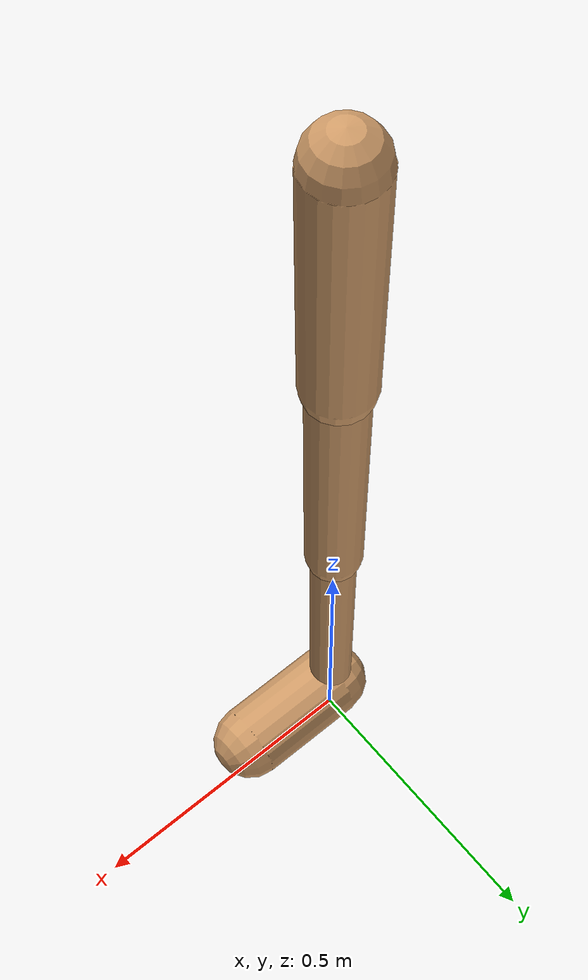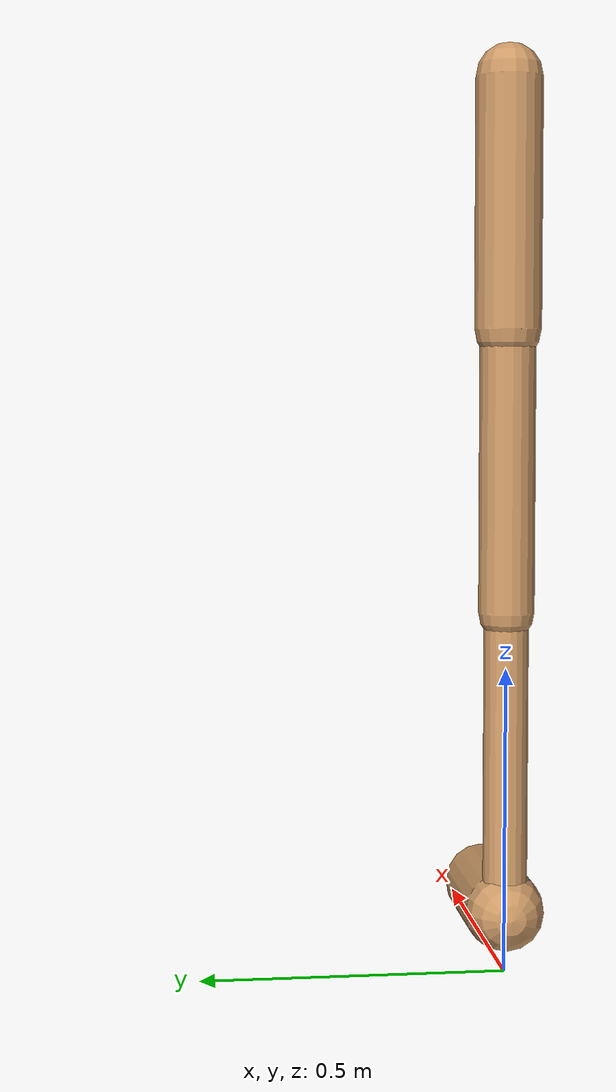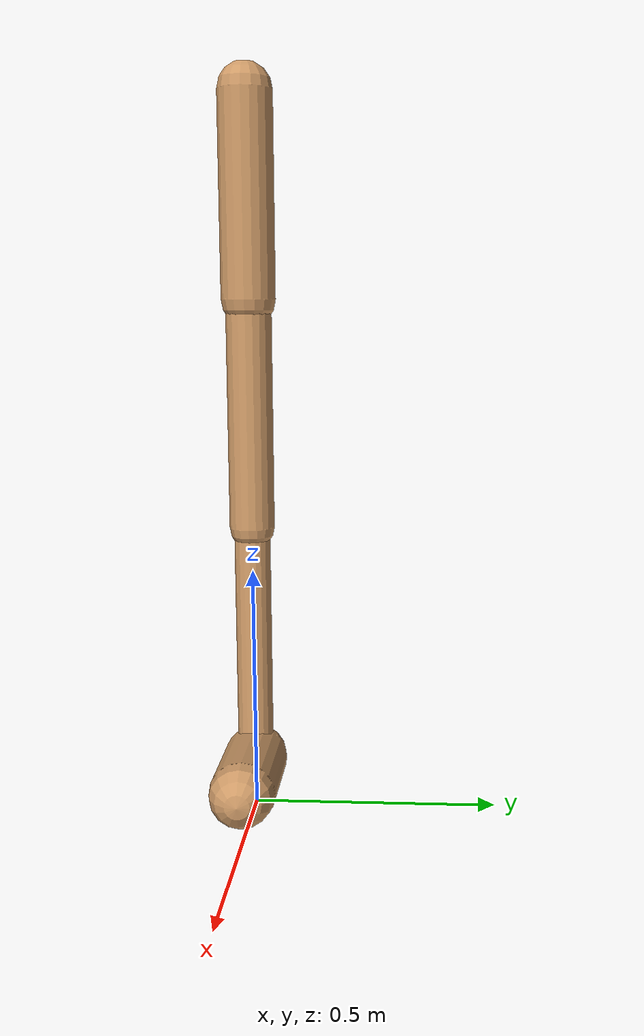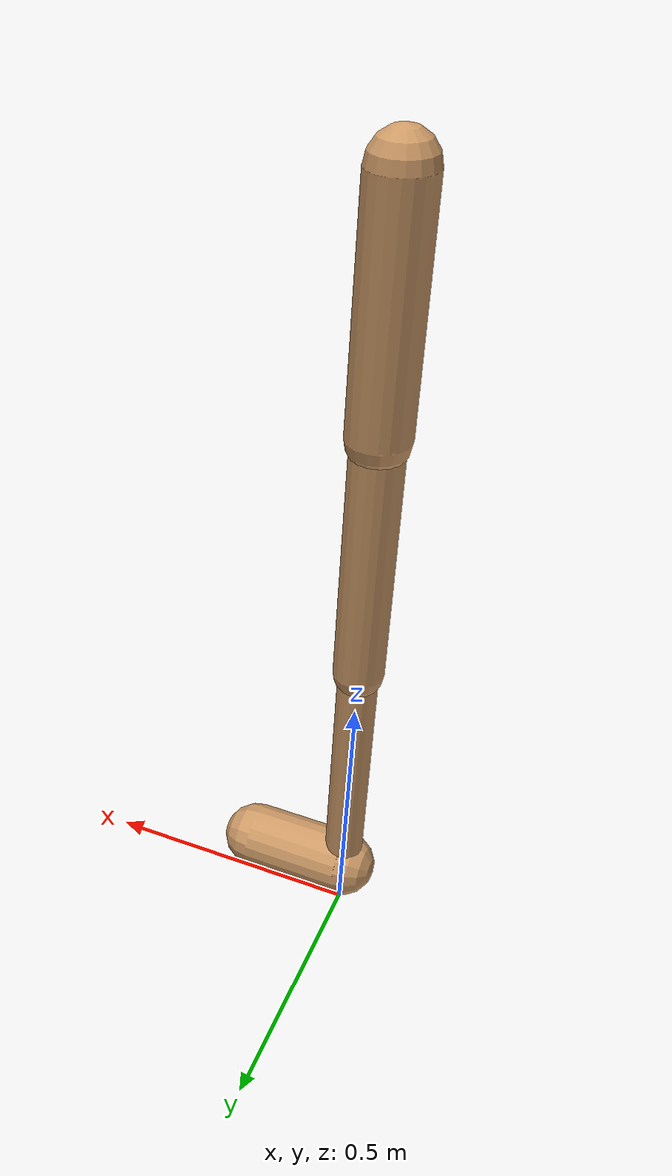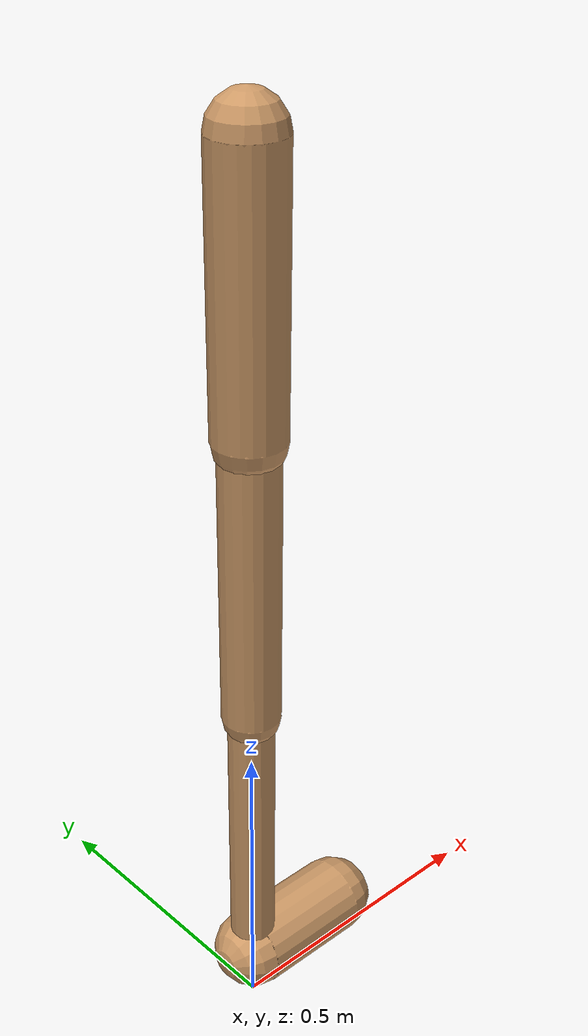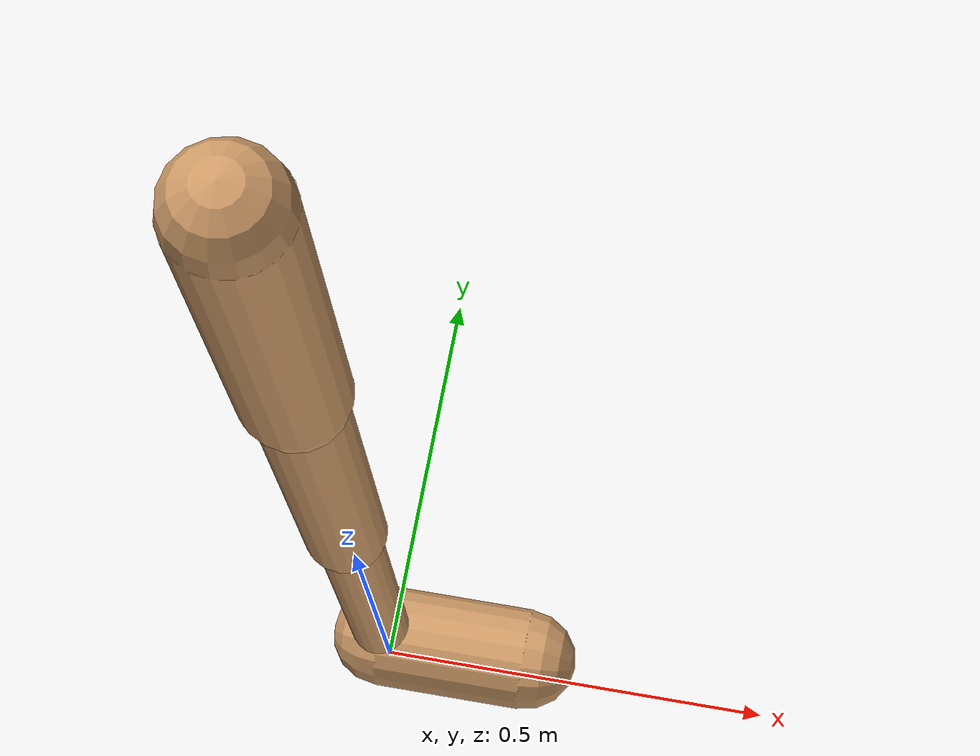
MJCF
<mujoco model="walker2d">
  <compiler angle="degree" coordinate="global" inertiafromgeom="true" />
  <default>
    <joint armature="0.01" damping=".1" limited="true" />
    <geom conaffinity="0" condim="3" contype="1" density="1000" friction="0.8 .1 .1" rgba="0.8 0.6 .4 1" />
  </default>
  <option integrator="RK4" timestep="0.002" />
  <worldbody>

    <body name="torso" pos="0 0 0.01646657309024116">
      <joint armature="0" axis="1 0 0" damping="0" limited="false" name="ignorex" pos="0 0 0" stiffness="0" type="slide" />
      <joint armature="0" axis="0 0 1" damping="0" limited="false" name="ignorez" pos="0 0 0" ref="1.25" stiffness="0" type="slide" />
      <joint armature="0" axis="0 1 0" damping="0" limited="false" name="ignorey" pos="0 0 0" stiffness="0" type="hinge" />
      <geom fromto="0 0 1.45 0 0 1.05" name="torso_geom" size="0.05427962342362104" type="capsule" />
      <body name="thigh">
        <joint axis="0 -1 0" name="thigh_joint" pos="0 0 1.05" range="-150 0" type="hinge" />
        <geom fromto="0.0 0.0 1.05 0.0 0.0 0.5922000443256752" name="thigh_geom" size="0.0456151229128954" type="capsule" />
        <body name="leg" pos="0.0 0.0 -0.007799955674324788">
          <joint axis="0 -1 0" name="leg_joint" pos="0 0 0.6" range="-150 0" type="hinge" />
          <geom fromto="0.0 0.0 0.6 0.0 0.0 0.0913333825840836" name="leg_geom" size="0.03649209833031632" type="capsule" />
          <body name="foot" pos="0.0 0.0 -0.0086666174159164">
            <joint axis="0 -1 0" name="foot_joint" pos="0 0 0.1" range="-45 45" type="hinge" />
            <geom fromto="0.0 0.0 0.09999999999999999 0.186439925074684 0.0 0.09999999999999999" name="foot_geom" size="0.06492392063478182" type="capsule" />
          </body>
        </body>
      </body>

      <body name="thigh_left">
        <joint axis="0 -1 0" name="thigh_left_joint" pos="0 0 1.05" range="-150 0" type="hinge" />
        <geom fromto="0.0 0.0 1.05 0.0 0.0 0.5922000443256752" name="thigh_left_geom" rgba=".7 .3 .6 1" size="0.0456151229128954" type="capsule" />
        <body name="leg_left" pos="0.0 0.0 -0.007799955674324788">
          <joint axis="0 -1 0" name="leg_left_joint" pos="0 0 0.6" range="-150 0" type="hinge" />
          <geom fromto="0.0 0.0 0.6 0.0 0.0 0.0913333825840836" name="leg_left_geom" rgba=".7 .3 .6 1" size="0.03649209833031632" type="capsule" />
          <body name="foot_left" pos="0.0 0.0 -0.0086666174159164">
            <joint axis="0 -1 0" name="foot_left_joint" pos="0 0 0.1" range="-45 45" type="hinge" />
            <geom fromto="0.0 0.0 0.09999999999999999 0.186439925074684 0.0 0.09999999999999999" name="foot_left_geom" rgba=".7 .3 .6 1" size="0.06492392063478182" type="capsule" />
          </body>
        </body>
      </body>
    </body>
  </worldbody>
  <actuator>

    <motor ctrllimited="true" ctrlrange="-1.0 1.0" gear="100" joint="thigh_joint" />
    <motor ctrllimited="true" ctrlrange="-1.0 1.0" gear="100" joint="leg_joint" />
    <motor ctrllimited="true" ctrlrange="-1.0 1.0" gear="100" joint="foot_joint" />
    <motor ctrllimited="true" ctrlrange="-1.0 1.0" gear="100" joint="thigh_left_joint" />
    <motor ctrllimited="true" ctrlrange="-1.0 1.0" gear="100" joint="leg_left_joint" />
    <motor ctrllimited="true" ctrlrange="-1.0 1.0" gear="100" joint="foot_left_joint" />

  </actuator>
</mujoco>
